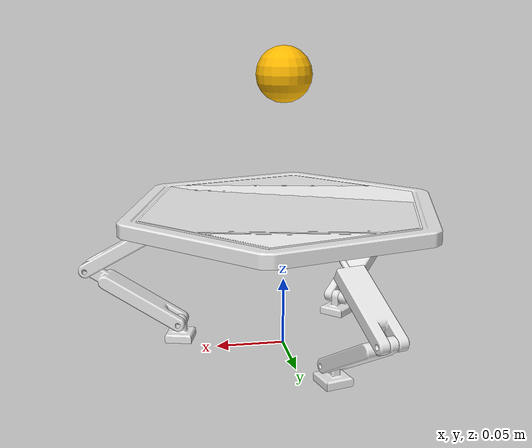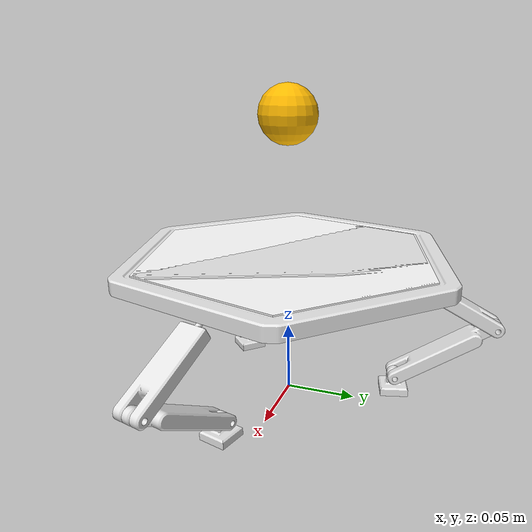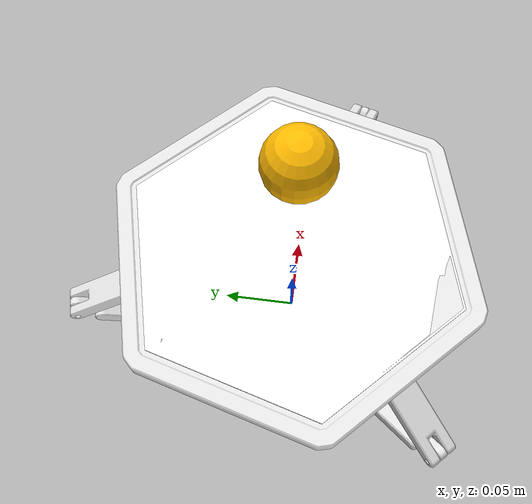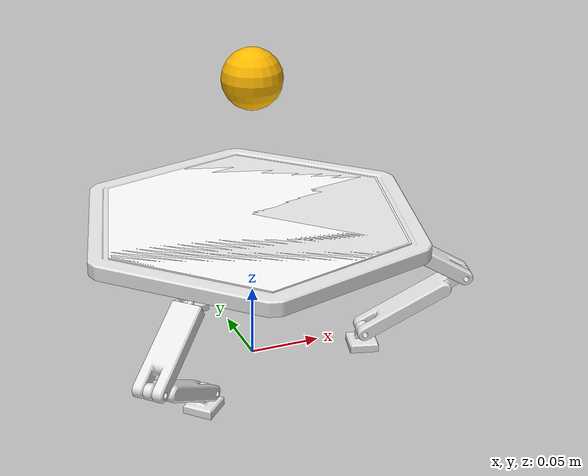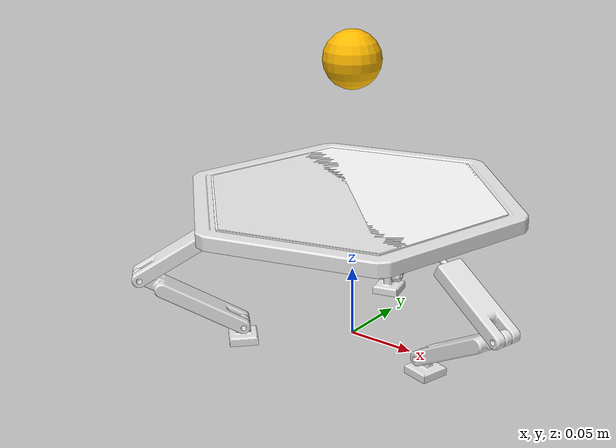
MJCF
<mujoco model="juggling_platform_3d">
  <option cone="elliptic" timestep="3e-3" integrator="implicitfast"/>
  <compiler angle="radian" coordinate="local" meshdir="/home/admin/workspace/src/descriptions/balancing_platform_3d_description/meshes"/>
  <option gravity="0 0 -9.81"/>

  <default>
    <joint damping="0.0"/>
    <pair solref="0.05 0.03" solimp="0.001 0.005 4 0.5 0.001"/>
    <geom type="mesh" contype="1" conaffinity="1" rgba="0.9 0.9 0.9 1"/>
  </default>

  <statistic center="0.0 0 0.2" extent="1.0"/>

  <visual>
    <headlight diffuse="0.6 0.6 0.6" ambient="0.3 0.3 0.3" specular="0 0 0"/>
    <rgba haze="0.15 0.25 0.35 1"/>
    <global azimuth="90" elevation="-20"/>
    <scale framelength="0.12" framewidth="0.01"/>
  </visual>

  <asset>
    <mesh name="motor" file="motor.stl" scale="0.001 0.001 0.001"/>
    <mesh name="arm" file="arm.stl" scale="0.001 0.001 0.001"/>
    <mesh name="arm_3d" file="arm_3d.stl" scale="0.001 0.001 0.001"/>
    <mesh name="platform" file="platform_3d.stl" scale="0.001 0.001 0.001"/>
    <mesh name="platform_collision" file="platform_3d_collision.stl" scale="0.001 0.001 0.001"/>

    <texture type="skybox" builtin="gradient" rgb1="0.3 0.5 0.7" rgb2="0 0 0" width="512" height="3072"/>
    <texture type="2d" name="groundplane" builtin="checker" mark="edge" rgb1="0.2 0.3 0.4" rgb2="0.1 0.2 0.3"
             markrgb="0.8 0.8 0.8" width="300" height="300"/>
    <material name="groundplane" texture="groundplane" texuniform="true" texrepeat="5 5" reflectance="0.2"/>
  </asset>

  <worldbody>
    <light pos="0 0 1.5" dir="0 0 -1" directional="true"/>
    <geom name="floor" size="0.5 0.5 0.05" type="plane" rgba="1 1 1 0"/> <!-- material="groundplane"-->
    <body name="first_motor" euler="0 0 0.785398163" pos="-0.055343798 -0.055343798 0">
      <geom mesh="motor"/>
      <inertial pos="0 0 0.004761" mass="23.468" diaginertia="1.031498 1.057814 1.273548"/>

         <body name="first_low_arm" euler="0 -1.047197551 0" pos="0 0 0.014">
            <joint name="first_motor_joint" type="hinge" axis="0 1 0" range="-0.3 1" limited="true"/>
            <geom mesh="arm" pos="0 0 0.04"/>
            <inertial pos="0 0 0.04" mass="0.107464" diaginertia="0.000052495 0.00004983497 0.000004385676"/>

            <body name="first_top_arm" euler="0 2.094395102 0" pos="0 0 0.08">
                <joint name="first_arm_joint" type="hinge" axis="0 1 0" range="-2 0.7"/>
                <geom mesh="arm_3d" pos="0 0 0.04"/>
                <inertial pos="0 0 0.04" mass="0.094881" diaginertia="0.000040710378 0.000038289782 0.000003912023"/>

                <body name="platform" euler="0 -1.047197551 1.570796327" pos="0 0 0.078">
                    <joint name="first_platform_joint_yaw" type="hinge" axis="0 0 1" limited="true" range="-2 2"/>
                    <joint name="first_platform_joint_pitch" type="hinge" axis="0 1 0" limited="true" range="-2 2"/>
                    <joint name="first_platform_joint_roll" type="hinge" axis="1 0 0" limited="true" range="-0.3 0.8"/>
                    <geom mesh="platform" euler="0 0 1.570796327" pos="0 -0.08 0.003" contype="0" conaffinity="0"/>
                    <geom name="platform_collision" mesh="platform_collision" pos="0 -0.08 0.003" euler="0 0 1.570796327" rgba="1 1 1 1" friction="0 0 0"/>
                    <inertial pos="0.0 -0.08 0.0078" mass="0.3179939" diaginertia="0.00103 0.00103 0.002056"/>

                    <body name="second_top_arm" pos="-0.069282032 -0.12 0" quat="0.8365163 -0.1294093 0.4829629 0.2241439">
                        <joint name="second_platform_joint_yaw" type="hinge" axis="0 0 1" limited="true" range="-2 2"/>
                        <joint name="second_platform_joint_pitch" type="hinge" axis="0 1 0" limited="true" range="-0.8 0.3"/>
                        <joint name="second_platform_joint_roll" type="hinge" axis="1 0 0" limited="true" range="-2 2"/>
                        <geom mesh="arm_3d" pos="0 0 -0.038" euler="0 0 0"/>
                        <inertial pos="0 0 -0.038" mass="0.094881" diaginertia="0.000040710378 0.000038289782 0.000003912023"/>

                        <body name="second_low_arm" euler="0 -2.094395102 0" pos="0 0 -0.078">
                            <joint name="second_arm_joint" type="hinge" axis="0 1 0" range="-0.7 2"/>
                            <geom mesh="arm" pos="0 0 -0.04"/>
                            <inertial pos="0 0 -0.04" mass="0.107464" diaginertia="0.000052495 0.00004983497 0.000004385676"/>

                            <body name="second_motor" pos="0 0 -0.08" euler="0 1.047197551 0">
                                <joint name="second_motor_joint" type="hinge" axis="0 1 0" range="-1 0.3" limited="true"/>
                                <geom mesh="motor" pos="0 0 -0.014"/>
                                <inertial pos="0 0 0.004761" mass="23.468" diaginertia="1.031498 1.057814 1.273548"/>
                            </body>
                        </body>
                    </body>

                    <body name="third_top_arm" pos="0.069282032 -0.12 0" quat="0.2241439 -0.4829629 0.1294093 0.8365163">
                        <joint name="third_platform_joint_yaw" type="hinge" axis="0 0 1" limited="true" range="-2 2"/>
                        <joint name="third_platform_joint_pitch" type="hinge" axis="0 1 0" limited="true" range="-0.8 0.3"/>
                        <joint name="third_platform_joint_roll" type="hinge" axis="1 0 0" limited="true" range="-2 2"/>
                        <geom mesh="arm_3d" pos="0 0 -0.038"/>
                        <inertial pos="0 0 -0.038" mass="0.094881" diaginertia="0.000040710378 0.000038289782 0.000003912023"/>

                        <body name="third_low_arm" euler="0 -2.094395102 0" pos="0 0 -0.078">
                            <joint name="third_arm_joint" type="hinge" axis="0 1 0" range="-0.7 2"/>
                            <geom mesh="arm" pos="0 0 -0.04"/>
                            <inertial pos="0 0 -0.04" mass="0.107464" diaginertia="0.000052495 0.00004983497 0.000004385676"/>

                            <body name="third_motor" pos="0 0 -0.08" euler="0 1.047197551 0">
                                <joint name="third_motor_joint" type="hinge" axis="0 1 0" range="-1 0.3" limited="true"/>
                                <geom mesh="motor" pos="0 0 -0.014"/>
                                <inertial pos="0 0 0.004761" mass="23.468" diaginertia="1.031498 1.057814 1.273548"/>
                            </body>
                        </body>
                    </body>
                </body>
            </body>
        </body>
    </body>

    <body name="ball" pos="0 0 0.2" euler="0 0 0">
      <freejoint name="ball_joint"/>
      <inertial pos="0 0 0" mass="0.027" diaginertia="4.3e-6 4.3e-6 4.3e-6"/>
      <geom name="ball" type="sphere" size="0.02" rgba="1 0.729 0 1" friction="0 0 0"/>
    </body>
  </worldbody>

  <equality>

    <weld body1="world" body2="second_motor" anchor="0.075601083 -0.020257249 0" active="true" solref="0.05 1"/>
    <weld body1="world" body2="third_motor" anchor="-0.020257249 0.075601083 0" active="true" solref="0.05 1"/>
  </equality>

  <contact>
    <exclude body1="first_motor" body2="ball"/>
    <exclude body1="second_motor" body2="ball"/>
    <exclude body1="third_motor" body2="ball"/>

    <exclude body1="first_low_arm" body2="ball"/>
    <exclude body1="first_top_arm" body2="ball"/>
    <exclude body1="second_low_arm" body2="ball"/>
    <exclude body1="second_top_arm" body2="ball"/>
    <exclude body1="third_low_arm" body2="ball"/>
    <exclude body1="third_top_arm" body2="ball"/>

    <exclude body1="platform" body2="first_motor"/>
    <exclude body1="platform" body2="second_motor"/>
    <exclude body1="platform" body2="third_motor"/>
    <exclude body1="platform" body2="first_low_arm"/>
    <exclude body1="platform" body2="first_top_arm"/>
    <exclude body1="platform" body2="second_low_arm"/>
    <exclude body1="platform" body2="second_top_arm"/>
    <exclude body1="platform" body2="third_low_arm"/>
    <exclude body1="platform" body2="third_top_arm"/>

    <exclude body1="first_low_arm" body2="first_top_arm"/>
    <exclude body1="first_low_arm" body2="first_motor"/>
    <exclude body1="second_low_arm" body2="second_top_arm"/>
    <exclude body1="second_low_arm" body2="second_motor"/>
    <exclude body1="third_low_arm" body2="third_top_arm"/>
    <exclude body1="third_low_arm" body2="third_motor"/>
    <pair geom1="platform_collision" geom2="ball"/>
    <pair geom1="floor" geom2="ball"/>
  </contact>

  <actuator>
    <position name="first_motor" joint="first_motor_joint" kp="50" kv="2.5" ctrlrange="-0.3 1"/>
    <position name="second_motor" joint="second_motor_joint" kp="50" kv="2.5" ctrlrange="-1 0.3"/>
    <position name="third_motor" joint="third_motor_joint" kp="50" kv="2.5" ctrlrange="-1 0.3"/>
  </actuator>

</mujoco>
